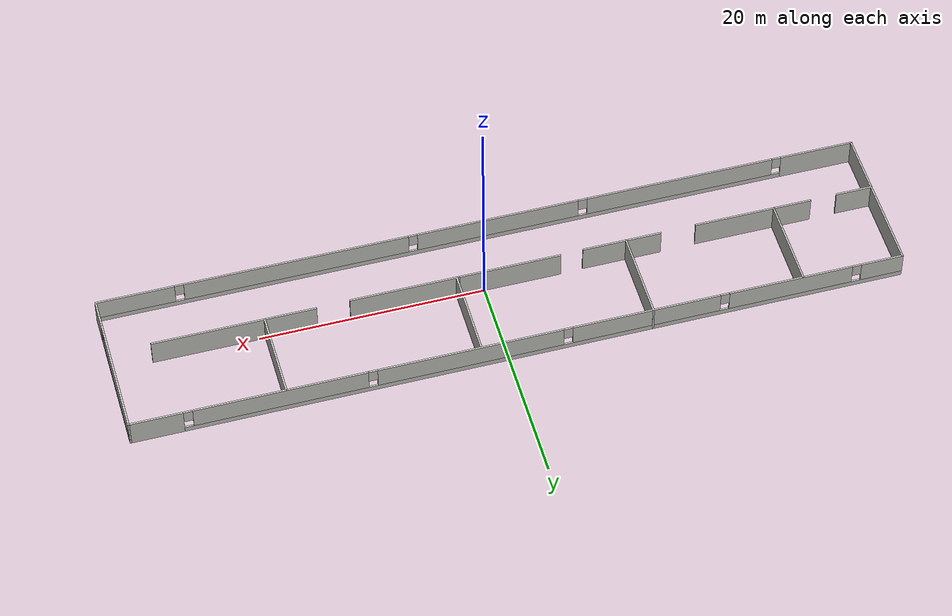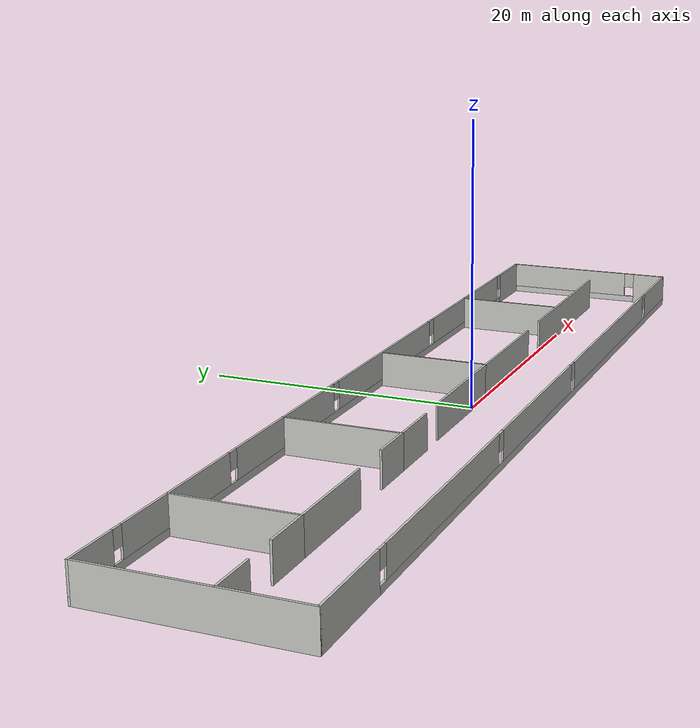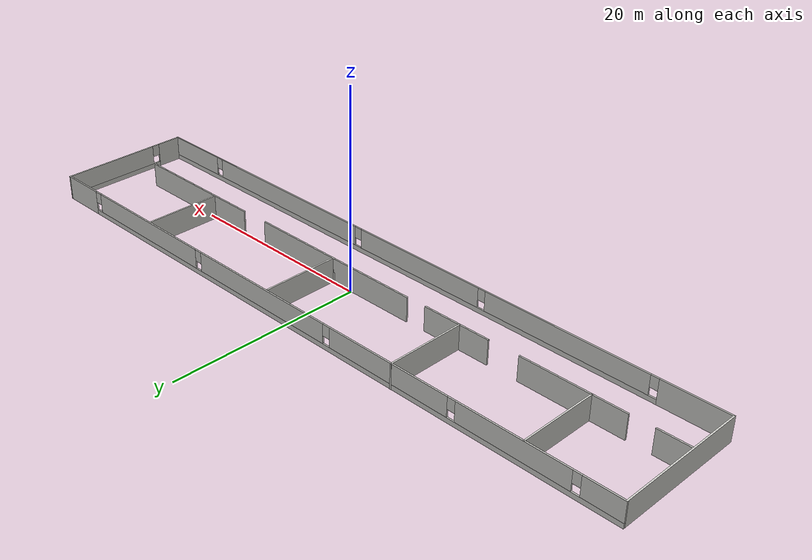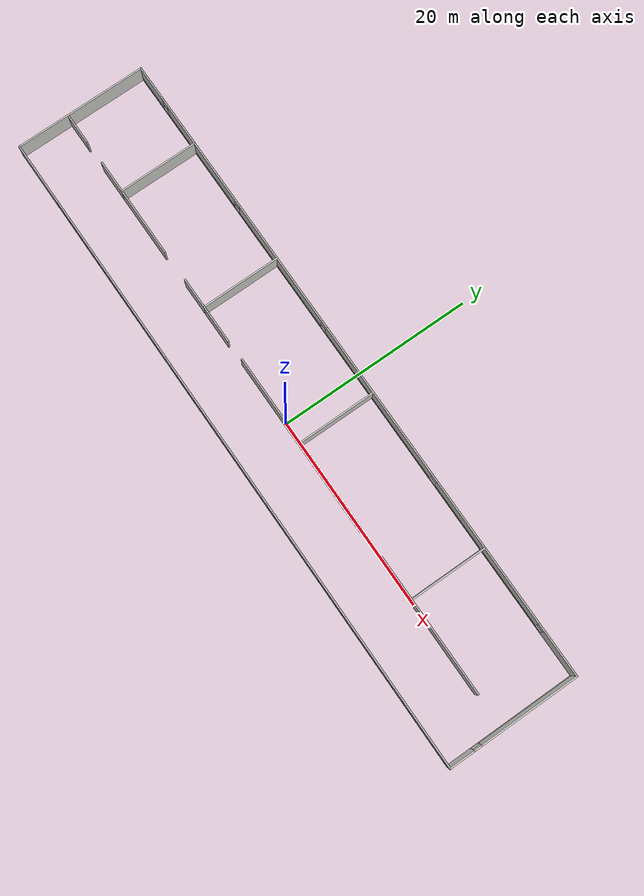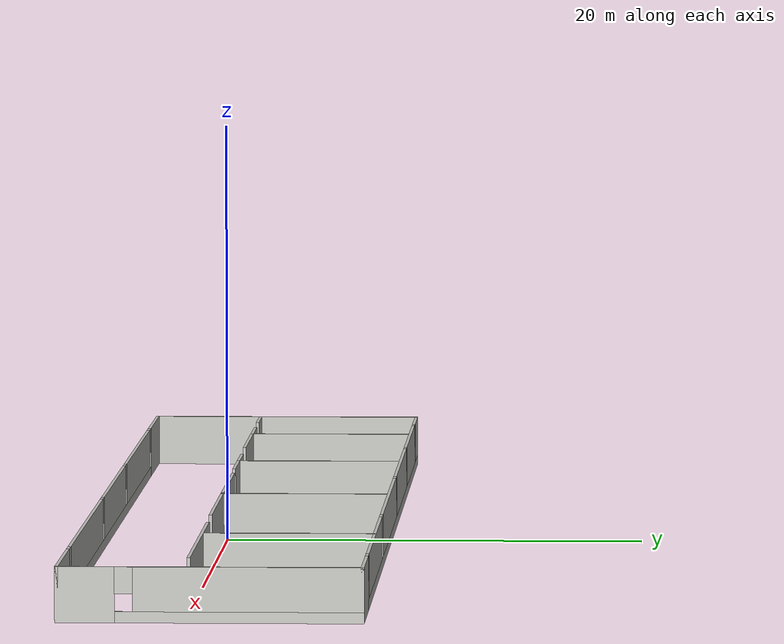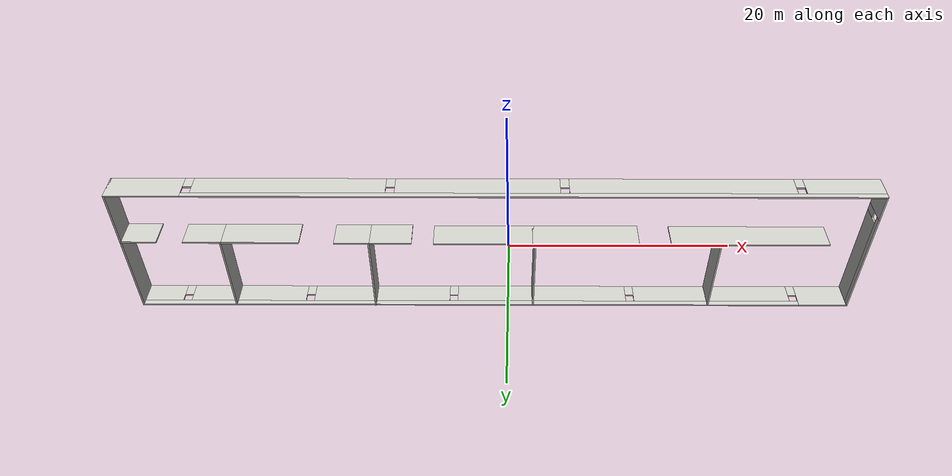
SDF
<?xml version='1.0'?>
<sdf version='1.7'>
  <model name='map_phong'>
    <pose>-1.19758 1.10073 0 0 -0 0</pose>
    <link name='Wall_15'>
      <collision name='Wall_15_Collision'>
        <geometry>
          <box>
            <size>8.25 0.15 2.5</size>
          </box>
        </geometry>
        <pose>0 0 1.25 0 -0 0</pose>
      </collision>
      <visual name='Wall_15_Visual'>
        <pose>0 0 1.25 0 -0 0</pose>
        <geometry>
          <box>
            <size>8.25 0.15 2.5</size>
          </box>
        </geometry>
        <material>
          <script>
            <uri>file://media/materials/scripts/gazebo.material</uri>
            <name>Gazebo/CeilingTiled</name>
          </script>
          <ambient>0.996078 0.47451 0.0196078 1</ambient>
        </material>
        <meta>
          <layer>0</layer>
        </meta>
      </visual>
      <pose>-25.1356 2.69949 0 0 -0 1.5708</pose>
    </link>
    <link name='Wall_22'>
      <collision name='Wall_22_Collision'>
        <geometry>
          <box>
            <size>8.25 0.15 2.5</size>
          </box>
        </geometry>
        <pose>0 0 1.25 0 -0 0</pose>
      </collision>
      <visual name='Wall_22_Visual'>
        <pose>0 0 1.25 0 -0 0</pose>
        <geometry>
          <box>
            <size>8.25 0.15 2.5</size>
          </box>
        </geometry>
        <material>
          <script>
            <uri>file://media/materials/scripts/gazebo.material</uri>
            <name>Gazebo/CeilingTiled</name>
          </script>
          <ambient>0.435294 0.796078 0.67451 1</ambient>
        </material>
        <meta>
          <layer>0</layer>
        </meta>
      </visual>
      <pose>-11.6301 2.75931 0 0 -0 -1.5708</pose>
    </link>
    <link name='Wall_24'>
      <collision name='Wall_24_Collision'>
        <geometry>
          <box>
            <size>8 0.15 2.5</size>
          </box>
        </geometry>
        <pose>0 0 1.25 0 -0 0</pose>
      </collision>
      <visual name='Wall_24_Visual'>
        <pose>0 0 1.25 0 -0 0</pose>
        <geometry>
          <box>
            <size>8 0.15 2.5</size>
          </box>
        </geometry>
        <material>
          <script>
            <uri>file://media/materials/scripts/gazebo.material</uri>
            <name>Gazebo/CeilingTiled</name>
          </script>
          <ambient>0.8 0 0 1</ambient>
        </material>
        <meta>
          <layer>0</layer>
        </meta>
      </visual>
      <pose>3.6323 2.72464 0 0 -0 -1.5708</pose>
    </link>
    <link name='Wall_26'>
      <collision name='Wall_26_Collision'>
        <geometry>
          <box>
            <size>8 0.15 2.5</size>
          </box>
        </geometry>
        <pose>0 0 1.25 0 -0 0</pose>
      </collision>
      <visual name='Wall_26_Visual'>
        <pose>0 0 1.25 0 -0 0</pose>
        <geometry>
          <box>
            <size>8 0.15 2.5</size>
          </box>
        </geometry>
        <material>
          <script>
            <uri>file://media/materials/scripts/gazebo.material</uri>
            <name>Gazebo/CeilingTiled</name>
          </script>
          <ambient>0.12549 0.290196 0.529412 1</ambient>
        </material>
        <meta>
          <layer>0</layer>
        </meta>
      </visual>
      <pose>20.6424 2.82223 0 0 -0 -1.5708</pose>
    </link>
    <link name='Wall_31'>
      <collision name='Wall_31_Collision'>
        <geometry>
          <box>
            <size>3.25 0.15 2.5</size>
          </box>
        </geometry>
        <pose>0 0 1.25 0 -0 0</pose>
      </collision>
      <visual name='Wall_31_Visual'>
        <pose>0 0 1.25 0 -0 0</pose>
        <geometry>
          <box>
            <size>3.25 0.15 2.5</size>
          </box>
        </geometry>
        <material>
          <script>
            <uri>file://media/materials/scripts/gazebo.material</uri>
            <name>Gazebo/CeilingTiled</name>
          </script>
          <ambient>0.996078 0.47451 0.0196078 1</ambient>
        </material>
        <meta>
          <layer>0</layer>
        </meta>
      </visual>
      <pose>-32.5535 -1.3908 0 0 -0 0</pose>
    </link>
    <link name='Wall_33'>
      <collision name='Wall_33_Collision'>
        <geometry>
          <box>
            <size>3.5 0.15 2.5</size>
          </box>
        </geometry>
        <pose>0 0 1.25 0 -0 0</pose>
      </collision>
      <visual name='Wall_33_Visual'>
        <pose>0 0 1.25 0 -0 0</pose>
        <geometry>
          <box>
            <size>3.5 0.15 2.5</size>
          </box>
        </geometry>
        <material>
          <script>
            <uri>file://media/materials/scripts/gazebo.material</uri>
            <name>Gazebo/CeilingTiled</name>
          </script>
          <ambient>0.996078 0.47451 0.0196078 1</ambient>
        </material>
        <meta>
          <layer>0</layer>
        </meta>
      </visual>
      <pose>-26.8106 -1.35051 0 0 -0 3.14159</pose>
    </link>
    <link name='Wall_35'>
      <collision name='Wall_35_Collision'>
        <geometry>
          <box>
            <size>7.25 0.15 2.5</size>
          </box>
        </geometry>
        <pose>0 0 1.25 0 -0 0</pose>
      </collision>
      <visual name='Wall_35_Visual'>
        <pose>0 0 1.25 0 -0 0</pose>
        <geometry>
          <box>
            <size>7.25 0.15 2.5</size>
          </box>
        </geometry>
        <material>
          <script>
            <uri>file://media/materials/scripts/gazebo.material</uri>
            <name>Gazebo/CeilingTiled</name>
          </script>
          <ambient>0.435294 0.796078 0.67451 1</ambient>
        </material>
        <meta>
          <layer>0</layer>
        </meta>
      </visual>
      <pose>-21.5856 -1.35051 0 0 -0 0</pose>
    </link>
    <link name='Wall_37'>
      <collision name='Wall_37_Collision'>
        <geometry>
          <box>
            <size>3.25 0.15 2.5</size>
          </box>
        </geometry>
        <pose>0 0 1.25 0 -0 0</pose>
      </collision>
      <visual name='Wall_37_Visual'>
        <pose>0 0 1.25 0 -0 0</pose>
        <geometry>
          <box>
            <size>3.25 0.15 2.5</size>
          </box>
        </geometry>
        <material>
          <script>
            <uri>file://media/materials/scripts/gazebo.material</uri>
            <name>Gazebo/CeilingTiled</name>
          </script>
          <ambient>0.435294 0.796078 0.67451 1</ambient>
        </material>
        <meta>
          <layer>0</layer>
        </meta>
      </visual>
      <pose>-13.1801 -1.29069 0 0 -0 3.14159</pose>
    </link>
    <link name='Wall_39'>
      <collision name='Wall_39_Collision'>
        <geometry>
          <box>
            <size>4 0.15 2.5</size>
          </box>
        </geometry>
        <pose>0 0 1.25 0 -0 0</pose>
      </collision>
      <visual name='Wall_39_Visual'>
        <pose>0 0 1.25 0 -0 0</pose>
        <geometry>
          <box>
            <size>4 0.15 2.5</size>
          </box>
        </geometry>
        <material>
          <script>
            <uri>file://media/materials/scripts/gazebo.material</uri>
            <name>Gazebo/CeilingTiled</name>
          </script>
          <ambient>0.8 0 0 1</ambient>
        </material>
        <meta>
          <layer>0</layer>
        </meta>
      </visual>
      <pose>-9.70515 -1.29069 0 0 -0 0</pose>
    </link>
    <link name='Wall_43'>
      <collision name='Wall_43_Collision'>
        <geometry>
          <box>
            <size>9.25 0.15 2.5</size>
          </box>
        </geometry>
        <pose>0 0 1.25 0 -0 0</pose>
      </collision>
      <visual name='Wall_43_Visual'>
        <pose>0 0 1.25 0 -0 0</pose>
        <geometry>
          <box>
            <size>9.25 0.15 2.5</size>
          </box>
        </geometry>
        <material>
          <script>
            <uri>file://media/materials/scripts/gazebo.material</uri>
            <name>Gazebo/CeilingTiled</name>
          </script>
          <ambient>0.8 0 0 1</ambient>
        </material>
        <meta>
          <layer>0</layer>
        </meta>
      </visual>
      <pose>-1.08266 -1.21451 0 0 -0 0</pose>
    </link>
    <link name='Wall_45'>
      <collision name='Wall_45_Collision'>
        <geometry>
          <box>
            <size>9.75 0.15 2.5</size>
          </box>
        </geometry>
        <pose>0 0 1.25 0 -0 0</pose>
      </collision>
      <visual name='Wall_45_Visual'>
        <pose>0 0 1.25 0 -0 0</pose>
        <geometry>
          <box>
            <size>9.75 0.15 2.5</size>
          </box>
        </geometry>
        <material>
          <script>
            <uri>file://media/materials/scripts/gazebo.material</uri>
            <name>Gazebo/CeilingTiled</name>
          </script>
          <ambient>0.12549 0.290196 0.529412 1</ambient>
        </material>
        <meta>
          <layer>0</layer>
        </meta>
      </visual>
      <pose>8.26734 -1.21451 0 0 -0 0</pose>
    </link>
    <link name='Wall_55'>
      <collision name='Wall_55_Collision'>
        <geometry>
          <box>
            <size>14.5 0.15 2.5</size>
          </box>
        </geometry>
        <pose>0 0 1.25 0 -0 0</pose>
      </collision>
      <visual name='Wall_55_Visual'>
        <pose>0 0 1.25 0 -0 0</pose>
        <geometry>
          <box>
            <size>14.5 0.15 2.5</size>
          </box>
        </geometry>
        <material>
          <script>
            <uri>file://media/materials/scripts/gazebo.material</uri>
            <name>Gazebo/CeilingTiled</name>
          </script>
          <ambient>0 1 0 1</ambient>
        </material>
        <meta>
          <layer>0</layer>
        </meta>
      </visual>
      <pose>23.323 -1.15387 0 0 -0 0</pose>
    </link>
    <link name='Wall_6'>
      <collision name='Wall_6_Collision'>
        <geometry>
          <box>
            <size>13.75 0.15 2.5</size>
          </box>
        </geometry>
        <pose>0 0 1.25 0 -0 0</pose>
      </collision>
      <visual name='Wall_6_Visual'>
        <pose>0 0 1.25 0 -0 0</pose>
        <geometry>
          <box>
            <size>13.75 0.15 2.5</size>
          </box>
        </geometry>
        <material>
          <script>
            <uri>file://media/materials/scripts/gazebo.material</uri>
            <name>Gazebo/CeilingTiled</name>
          </script>
          <ambient>0 0 0 1</ambient>
        </material>
        <meta>
          <layer>0</layer>
        </meta>
      </visual>
      <pose>-34.175 -0.00931 0 0 -0 -1.5708</pose>
    </link>
    <link name='Wall_7'>
      <pose>-1e-06 -6.80931 0 0 -0 0</pose>
      <visual name='Wall_7_Visual_0'>
        <pose>-30.9175 0 1.25 0 -0 0</pose>
        <geometry>
          <box>
            <size>6.66493 0.15 2.5</size>
          </box>
        </geometry>
        <material>
          <script>
            <uri>file://media/materials/scripts/gazebo.material</uri>
            <name>Gazebo/CeilingTiled</name>
          </script>
          <ambient>0.996078 0.47451 0.0196078 1</ambient>
        </material>
        <meta>
          <layer>0</layer>
        </meta>
      </visual>
      <collision name='Wall_7_Collision_0'>
        <geometry>
          <box>
            <size>6.66493 0.15 2.5</size>
          </box>
        </geometry>
        <pose>-30.9175 0 1.25 0 -0 0</pose>
      </collision>
      <visual name='Wall_7_Visual_1'>
        <pose>3.33246 0 0.25 0 -0 0</pose>
        <geometry>
          <box>
            <size>61.8351 0.15 0.5</size>
          </box>
        </geometry>
        <material>
          <script>
            <uri>file://media/materials/scripts/gazebo.material</uri>
            <name>Gazebo/CeilingTiled</name>
          </script>
          <ambient>0.996078 0.47451 0.0196078 1</ambient>
        </material>
        <meta>
          <layer>0</layer>
        </meta>
      </visual>
      <collision name='Wall_7_Collision_1'>
        <geometry>
          <box>
            <size>61.8351 0.15 0.5</size>
          </box>
        </geometry>
        <pose>3.33246 0 0.25 0 -0 0</pose>
      </collision>
      <visual name='Wall_7_Visual_2'>
        <pose>-18.2456 0 1.5 0 -0 0</pose>
        <geometry>
          <box>
            <size>17.0789 0.15 2</size>
          </box>
        </geometry>
        <material>
          <script>
            <uri>file://media/materials/scripts/gazebo.material</uri>
            <name>Gazebo/CeilingTiled</name>
          </script>
          <ambient>0.996078 0.47451 0.0196078 1</ambient>
        </material>
        <meta>
          <layer>0</layer>
        </meta>
      </visual>
      <collision name='Wall_7_Collision_2'>
        <geometry>
          <box>
            <size>17.0789 0.15 2</size>
          </box>
        </geometry>
        <pose>-18.2456 0 1.5 0 -0 0</pose>
      </collision>
      <visual name='Wall_7_Visual_3'>
        <pose>-1.6131 0 1.5 0 -0 0</pose>
        <geometry>
          <box>
            <size>14.5862 0.15 2</size>
          </box>
        </geometry>
        <material>
          <script>
            <uri>file://media/materials/scripts/gazebo.material</uri>
            <name>Gazebo/CeilingTiled</name>
          </script>
          <ambient>0.996078 0.47451 0.0196078 1</ambient>
        </material>
        <meta>
          <layer>0</layer>
        </meta>
      </visual>
      <collision name='Wall_7_Collision_3'>
        <geometry>
          <box>
            <size>14.5862 0.15 2</size>
          </box>
        </geometry>
        <pose>-1.6131 0 1.5 0 -0 0</pose>
      </collision>
      <visual name='Wall_7_Visual_4'>
        <pose>16.4807 0 1.5 0 -0 0</pose>
        <geometry>
          <box>
            <size>20.0014 0.15 2</size>
          </box>
        </geometry>
        <material>
          <script>
            <uri>file://media/materials/scripts/gazebo.material</uri>
            <name>Gazebo/CeilingTiled</name>
          </script>
          <ambient>0.996078 0.47451 0.0196078 1</ambient>
        </material>
        <meta>
          <layer>0</layer>
        </meta>
      </visual>
      <collision name='Wall_7_Collision_4'>
        <geometry>
          <box>
            <size>20.0014 0.15 2</size>
          </box>
        </geometry>
        <pose>16.4807 0 1.5 0 -0 0</pose>
      </collision>
      <visual name='Wall_7_Visual_5'>
        <pose>30.7657 0 1.5 0 -0 0</pose>
        <geometry>
          <box>
            <size>6.96861 0.15 2</size>
          </box>
        </geometry>
        <material>
          <script>
            <uri>file://media/materials/scripts/gazebo.material</uri>
            <name>Gazebo/CeilingTiled</name>
          </script>
          <ambient>0.996078 0.47451 0.0196078 1</ambient>
        </material>
        <meta>
          <layer>0</layer>
        </meta>
      </visual>
      <collision name='Wall_7_Collision_5'>
        <geometry>
          <box>
            <size>6.96861 0.15 2</size>
          </box>
        </geometry>
        <pose>30.7657 0 1.5 0 -0 0</pose>
      </collision>
      <visual name='Wall_7_Visual_6'>
        <pose>-27.1851 0 1.9 0 -0 0</pose>
        <geometry>
          <box>
            <size>0.8 0.15 1.2</size>
          </box>
        </geometry>
        <material>
          <script>
            <uri>file://media/materials/scripts/gazebo.material</uri>
            <name>Gazebo/CeilingTiled</name>
          </script>
          <ambient>0.996078 0.47451 0.0196078 1</ambient>
        </material>
        <meta>
          <layer>0</layer>
        </meta>
      </visual>
      <collision name='Wall_7_Collision_6'>
        <geometry>
          <box>
            <size>0.8 0.15 1.2</size>
          </box>
        </geometry>
        <pose>-27.1851 0 1.9 0 -0 0</pose>
      </collision>
      <visual name='Wall_7_Visual_7'>
        <pose>-9.30618 0 1.9 0 -0 0</pose>
        <geometry>
          <box>
            <size>0.8 0.15 1.2</size>
          </box>
        </geometry>
        <material>
          <script>
            <uri>file://media/materials/scripts/gazebo.material</uri>
            <name>Gazebo/CeilingTiled</name>
          </script>
          <ambient>0.996078 0.47451 0.0196078 1</ambient>
        </material>
        <meta>
          <layer>0</layer>
        </meta>
      </visual>
      <collision name='Wall_7_Collision_7'>
        <geometry>
          <box>
            <size>0.8 0.15 1.2</size>
          </box>
        </geometry>
        <pose>-9.30618 0 1.9 0 -0 0</pose>
      </collision>
      <visual name='Wall_7_Visual_8'>
        <pose>6.07999 0 1.9 0 -0 0</pose>
        <geometry>
          <box>
            <size>0.8 0.15 1.2</size>
          </box>
        </geometry>
        <material>
          <script>
            <uri>file://media/materials/scripts/gazebo.material</uri>
            <name>Gazebo/CeilingTiled</name>
          </script>
          <ambient>0.996078 0.47451 0.0196078 1</ambient>
        </material>
        <meta>
          <layer>0</layer>
        </meta>
      </visual>
      <collision name='Wall_7_Collision_8'>
        <geometry>
          <box>
            <size>0.8 0.15 1.2</size>
          </box>
        </geometry>
        <pose>6.07999 0 1.9 0 -0 0</pose>
      </collision>
      <visual name='Wall_7_Visual_9'>
        <pose>26.8814 0 1.9 0 -0 0</pose>
        <geometry>
          <box>
            <size>0.8 0.15 1.2</size>
          </box>
        </geometry>
        <material>
          <script>
            <uri>file://media/materials/scripts/gazebo.material</uri>
            <name>Gazebo/CeilingTiled</name>
          </script>
          <ambient>0.996078 0.47451 0.0196078 1</ambient>
        </material>
        <meta>
          <layer>0</layer>
        </meta>
      </visual>
      <collision name='Wall_7_Collision_9'>
        <geometry>
          <box>
            <size>0.8 0.15 1.2</size>
          </box>
        </geometry>
        <pose>26.8814 0 1.9 0 -0 0</pose>
      </collision>
    </link>
    <link name='Wall_8'>
      <pose>34.175 -0.00931 0 0 -0 1.5708</pose>
      <visual name='Wall_8_Visual_0'>
        <pose>-5.5447 0 1.25 0 -0 0</pose>
        <geometry>
          <box>
            <size>2.66059 0.15 2.5</size>
          </box>
        </geometry>
        <material>
          <script>
            <uri>file://media/materials/scripts/gazebo.material</uri>
            <name>Gazebo/CeilingTiled</name>
          </script>
          <ambient>0.180392 0.203922 0.211765 1</ambient>
        </material>
        <meta>
          <layer>0</layer>
        </meta>
      </visual>
      <collision name='Wall_8_Collision_0'>
        <geometry>
          <box>
            <size>2.66059 0.15 2.5</size>
          </box>
        </geometry>
        <pose>-5.5447 0 1.25 0 -0 0</pose>
      </collision>
      <visual name='Wall_8_Visual_1'>
        <pose>1.3303 0 0.25 0 -0 0</pose>
        <geometry>
          <box>
            <size>11.0894 0.15 0.5</size>
          </box>
        </geometry>
        <material>
          <script>
            <uri>file://media/materials/scripts/gazebo.material</uri>
            <name>Gazebo/CeilingTiled</name>
          </script>
          <ambient>0.180392 0.203922 0.211765 1</ambient>
        </material>
        <meta>
          <layer>0</layer>
        </meta>
      </visual>
      <collision name='Wall_8_Collision_1'>
        <geometry>
          <box>
            <size>11.0894 0.15 0.5</size>
          </box>
        </geometry>
        <pose>1.3303 0 0.25 0 -0 0</pose>
      </collision>
      <visual name='Wall_8_Visual_2'>
        <pose>1.7303 0 1.5 0 -0 0</pose>
        <geometry>
          <box>
            <size>10.2894 0.15 2</size>
          </box>
        </geometry>
        <material>
          <script>
            <uri>file://media/materials/scripts/gazebo.material</uri>
            <name>Gazebo/CeilingTiled</name>
          </script>
          <ambient>0.180392 0.203922 0.211765 1</ambient>
        </material>
        <meta>
          <layer>0</layer>
        </meta>
      </visual>
      <collision name='Wall_8_Collision_2'>
        <geometry>
          <box>
            <size>10.2894 0.15 2</size>
          </box>
        </geometry>
        <pose>1.7303 0 1.5 0 -0 0</pose>
      </collision>
      <visual name='Wall_8_Visual_3'>
        <pose>-3.81441 0 1.9 0 -0 0</pose>
        <geometry>
          <box>
            <size>0.8 0.15 1.2</size>
          </box>
        </geometry>
        <material>
          <script>
            <uri>file://media/materials/scripts/gazebo.material</uri>
            <name>Gazebo/CeilingTiled</name>
          </script>
          <ambient>0.180392 0.203922 0.211765 1</ambient>
        </material>
        <meta>
          <layer>0</layer>
        </meta>
      </visual>
      <collision name='Wall_8_Collision_3'>
        <geometry>
          <box>
            <size>0.8 0.15 1.2</size>
          </box>
        </geometry>
        <pose>-3.81441 0 1.9 0 -0 0</pose>
      </collision>
    </link>
    <link name='Wall_9'>
      <pose>-1e-06 6.79069 0 0 -0 3.14159</pose>
      <visual name='Wall_9_Visual_0'>
        <pose>-31.8831 0 1.25 0 -0 0</pose>
        <geometry>
          <box>
            <size>4.73374 0.15 2.5</size>
          </box>
        </geometry>
        <material>
          <script>
            <uri>file://media/materials/scripts/gazebo.material</uri>
            <name>Gazebo/CeilingTiled</name>
          </script>
          <ambient>0.12549 0.290196 0.529412 1</ambient>
        </material>
        <meta>
          <layer>0</layer>
        </meta>
      </visual>
      <collision name='Wall_9_Collision_0'>
        <geometry>
          <box>
            <size>4.73374 0.15 2.5</size>
          </box>
        </geometry>
        <pose>-31.8831 0 1.25 0 -0 0</pose>
      </collision>
      <visual name='Wall_9_Visual_1'>
        <pose>2.36687 0 0.25 0 -0 0</pose>
        <geometry>
          <box>
            <size>63.7663 0.15 0.5</size>
          </box>
        </geometry>
        <material>
          <script>
            <uri>file://media/materials/scripts/gazebo.material</uri>
            <name>Gazebo/CeilingTiled</name>
          </script>
          <ambient>0.12549 0.290196 0.529412 1</ambient>
        </material>
        <meta>
          <layer>0</layer>
        </meta>
      </visual>
      <collision name='Wall_9_Collision_1'>
        <geometry>
          <box>
            <size>63.7663 0.15 0.5</size>
          </box>
        </geometry>
        <pose>2.36687 0 0.25 0 -0 0</pose>
      </collision>
      <visual name='Wall_9_Visual_2'>
        <pose>-21.1223 0 1.5 0 -0 0</pose>
        <geometry>
          <box>
            <size>15.1879 0.15 2</size>
          </box>
        </geometry>
        <material>
          <script>
            <uri>file://media/materials/scripts/gazebo.material</uri>
            <name>Gazebo/CeilingTiled</name>
          </script>
          <ambient>0.12549 0.290196 0.529412 1</ambient>
        </material>
        <meta>
          <layer>0</layer>
        </meta>
      </visual>
      <collision name='Wall_9_Collision_2'>
        <geometry>
          <box>
            <size>15.1879 0.15 2</size>
          </box>
        </geometry>
        <pose>-21.1223 0 1.5 0 -0 0</pose>
      </collision>
      <visual name='Wall_9_Visual_3'>
        <pose>-4.53277 0 1.5 0 -0 0</pose>
        <geometry>
          <box>
            <size>16.3912 0.15 2</size>
          </box>
        </geometry>
        <material>
          <script>
            <uri>file://media/materials/scripts/gazebo.material</uri>
            <name>Gazebo/CeilingTiled</name>
          </script>
          <ambient>0.12549 0.290196 0.529412 1</ambient>
        </material>
        <meta>
          <layer>0</layer>
        </meta>
      </visual>
      <collision name='Wall_9_Collision_3'>
        <geometry>
          <box>
            <size>16.3912 0.15 2</size>
          </box>
        </geometry>
        <pose>-4.53277 0 1.5 0 -0 0</pose>
      </collision>
      <visual name='Wall_9_Visual_4'>
        <pose>11.0683 0 1.5 0 -0 0</pose>
        <geometry>
          <box>
            <size>13.2109 0.15 2</size>
          </box>
        </geometry>
        <material>
          <script>
            <uri>file://media/materials/scripts/gazebo.material</uri>
            <name>Gazebo/CeilingTiled</name>
          </script>
          <ambient>0.12549 0.290196 0.529412 1</ambient>
        </material>
        <meta>
          <layer>0</layer>
        </meta>
      </visual>
      <collision name='Wall_9_Collision_4'>
        <geometry>
          <box>
            <size>13.2109 0.15 2</size>
          </box>
        </geometry>
        <pose>11.0683 0 1.5 0 -0 0</pose>
      </collision>
      <visual name='Wall_9_Visual_5'>
        <pose>24.0477 0 1.5 0 -0 0</pose>
        <geometry>
          <box>
            <size>11.1479 0.15 2</size>
          </box>
        </geometry>
        <material>
          <script>
            <uri>file://media/materials/scripts/gazebo.material</uri>
            <name>Gazebo/CeilingTiled</name>
          </script>
          <ambient>0.12549 0.290196 0.529412 1</ambient>
        </material>
        <meta>
          <layer>0</layer>
        </meta>
      </visual>
      <collision name='Wall_9_Collision_5'>
        <geometry>
          <box>
            <size>11.1479 0.15 2</size>
          </box>
        </geometry>
        <pose>24.0477 0 1.5 0 -0 0</pose>
      </collision>
      <visual name='Wall_9_Visual_6'>
        <pose>32.3358 0 1.5 0 -0 0</pose>
        <geometry>
          <box>
            <size>3.82837 0.15 2</size>
          </box>
        </geometry>
        <material>
          <script>
            <uri>file://media/materials/scripts/gazebo.material</uri>
            <name>Gazebo/CeilingTiled</name>
          </script>
          <ambient>0.12549 0.290196 0.529412 1</ambient>
        </material>
        <meta>
          <layer>0</layer>
        </meta>
      </visual>
      <collision name='Wall_9_Collision_6'>
        <geometry>
          <box>
            <size>3.82837 0.15 2</size>
          </box>
        </geometry>
        <pose>32.3358 0 1.5 0 -0 0</pose>
      </collision>
      <visual name='Wall_9_Visual_7'>
        <pose>-29.1163 0 1.9 0 -0 0</pose>
        <geometry>
          <box>
            <size>0.8 0.15 1.2</size>
          </box>
        </geometry>
        <material>
          <script>
            <uri>file://media/materials/scripts/gazebo.material</uri>
            <name>Gazebo/CeilingTiled</name>
          </script>
          <ambient>0.12549 0.290196 0.529412 1</ambient>
        </material>
        <meta>
          <layer>0</layer>
        </meta>
      </visual>
      <collision name='Wall_9_Collision_7'>
        <geometry>
          <box>
            <size>0.8 0.15 1.2</size>
          </box>
        </geometry>
        <pose>-29.1163 0 1.9 0 -0 0</pose>
      </collision>
      <visual name='Wall_9_Visual_8'>
        <pose>-13.1284 0 1.9 0 -0 0</pose>
        <geometry>
          <box>
            <size>0.8 0.15 1.2</size>
          </box>
        </geometry>
        <material>
          <script>
            <uri>file://media/materials/scripts/gazebo.material</uri>
            <name>Gazebo/CeilingTiled</name>
          </script>
          <ambient>0.12549 0.290196 0.529412 1</ambient>
        </material>
        <meta>
          <layer>0</layer>
        </meta>
      </visual>
      <collision name='Wall_9_Collision_8'>
        <geometry>
          <box>
            <size>0.8 0.15 1.2</size>
          </box>
        </geometry>
        <pose>-13.1284 0 1.9 0 -0 0</pose>
      </collision>
      <visual name='Wall_9_Visual_9'>
        <pose>4.06285 0 1.9 0 -0 0</pose>
        <geometry>
          <box>
            <size>0.8 0.15 1.2</size>
          </box>
        </geometry>
        <material>
          <script>
            <uri>file://media/materials/scripts/gazebo.material</uri>
            <name>Gazebo/CeilingTiled</name>
          </script>
          <ambient>0.12549 0.290196 0.529412 1</ambient>
        </material>
        <meta>
          <layer>0</layer>
        </meta>
      </visual>
      <collision name='Wall_9_Collision_9'>
        <geometry>
          <box>
            <size>0.8 0.15 1.2</size>
          </box>
        </geometry>
        <pose>4.06285 0 1.9 0 -0 0</pose>
      </collision>
      <visual name='Wall_9_Visual_10'>
        <pose>18.0737 0 1.9 0 -0 0</pose>
        <geometry>
          <box>
            <size>0.8 0.15 1.2</size>
          </box>
        </geometry>
        <material>
          <script>
            <uri>file://media/materials/scripts/gazebo.material</uri>
            <name>Gazebo/CeilingTiled</name>
          </script>
          <ambient>0.12549 0.290196 0.529412 1</ambient>
        </material>
        <meta>
          <layer>0</layer>
        </meta>
      </visual>
      <collision name='Wall_9_Collision_10'>
        <geometry>
          <box>
            <size>0.8 0.15 1.2</size>
          </box>
        </geometry>
        <pose>18.0737 0 1.9 0 -0 0</pose>
      </collision>
      <visual name='Wall_9_Visual_11'>
        <pose>30.0216 0 1.9 0 -0 0</pose>
        <geometry>
          <box>
            <size>0.8 0.15 1.2</size>
          </box>
        </geometry>
        <material>
          <script>
            <uri>file://media/materials/scripts/gazebo.material</uri>
            <name>Gazebo/CeilingTiled</name>
          </script>
          <ambient>0.12549 0.290196 0.529412 1</ambient>
        </material>
        <meta>
          <layer>0</layer>
        </meta>
      </visual>
      <collision name='Wall_9_Collision_11'>
        <geometry>
          <box>
            <size>0.8 0.15 1.2</size>
          </box>
        </geometry>
        <pose>30.0216 0 1.9 0 -0 0</pose>
      </collision>
    </link>
    <static>1</static>
  </model>
</sdf>
